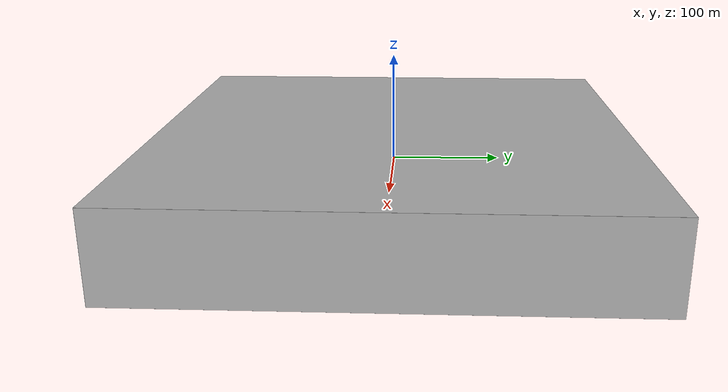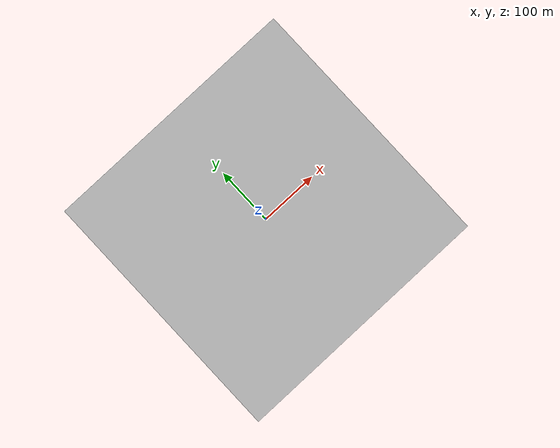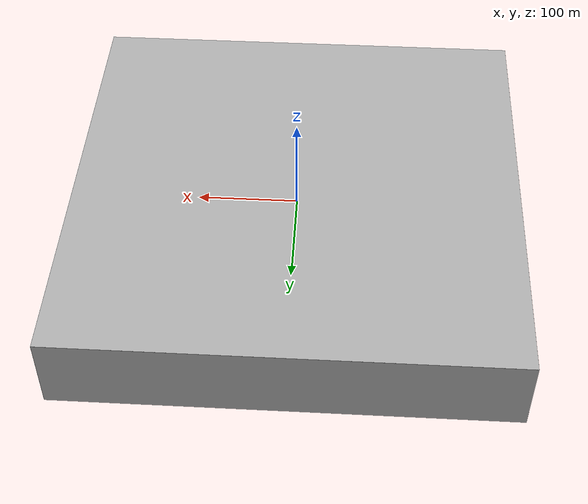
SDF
<sdf version="1.4">
 <world name="compact_underwater_terrain">
  <include><uri>model://sun</uri></include>
  <model name="compact_ocean_box">
   <static>true</static>
   <link name="link">
    <visual name="ground">
     <cast_shadows>false</cast_shadows>
     <pose>0 0 -50 0 0 0</pose>
     <geometry><box><size>444 444 .1</size></box></geometry>
     <material>
      <script>
       <uri>file://Media/materials/scripts/sand.material</uri>
       <name>UUVSimulator/SandAndStones</name>
      </script>
     </material>
    </visual>
    <collision name="ground">
     <pose>0 0 -50 0 0 0</pose>
     <geometry><box><size>444 444 .1</size></box></geometry>
    </collision>
    <visual name="surface">
     <cast_shadows>false</cast_shadows>
     <pose>0 0 30 0 0 0</pose>
     <geometry><box><size>444 444 .1</size></box></geometry>
     <material>
      <script>
       <uri>file://Media/materials/scripts/water.material</uri>
       <name>UUVSimulator/StaticDeepWater</name>
      </script>
     </material>
    </visual>
    <visual name="main_water_body">
     <cast_shadows>false</cast_shadows>
     <pose>0 0 -10 0 0 0</pose>
     <geometry><box><size>444 444 80</size></box></geometry>
     <material>
      <script><uri>file://Media/materials/scripts/water.material</uri><name>UUVSimulator/StaticWater</name></script>
     </material>
    </visual>
    <visual name="north">
     <cast_shadows>false</cast_shadows>
     <pose>222 0 -10 0 0 0</pose>
     <geometry><box><size>.1 444 80</size></box></geometry>
     <material>
      <script><uri>file://Media/materials/scripts/water.material</uri><name>UUVSimulator/SeaWall</name></script>
     </material>
    </visual>
    <visual name="south">
     <cast_shadows>false</cast_shadows>
     <pose>-222 0 -10 0 0 0</pose>
     <geometry><box><size>.1 444 80</size></box></geometry>
     <material>
      <script><uri>file://Media/materials/scripts/water.material</uri><name>UUVSimulator/SeaWall</name></script>
     </material>
    </visual>
    <visual name="east">
     <cast_shadows>false</cast_shadows>
     <pose>0 -222 -10 0 0 0</pose>
     <geometry><box><size>444 .1 80</size></box></geometry>
     <material>
      <script><uri>file://Media/materials/scripts/water.material</uri><name>UUVSimulator/SeaWall</name></script>
     </material>
    </visual>
    <visual name="west">
     <cast_shadows>false</cast_shadows>
     <pose>0 222 -10 0 0 0</pose>
     <geometry><box><size>444 .1 80</size></box></geometry>
     <material>
      <script><uri>file://Media/materials/scripts/water.material</uri><name>UUVSimulator/SeaWall</name></script>
     </material>
    </visual>
   </link>
  </model>
  <plugin name="underwater_current_plugin" filename="libuuv_underwater_current_ros_plugin.so">
   <namespace>hydrodynamics</namespace>
   <constant_current>
    <topic>current_velocity</topic>
    <velocity><mean>0</mean><min>0</min><max>5</max><mu>0.0</mu><noiseAmp>0.0</noiseAmp></velocity>
    <horizontal_angle>
     <mean>0</mean>
     <min>-3.141592653589793238</min>
     <max>3.141592653589793238</max>
     <mu>0.0</mu>
     <noiseAmp>0.0</noiseAmp>
    </horizontal_angle>
    <vertical_angle>
     <mean>0</mean>
     <min>-3.141592653589793238</min>
     <max>3.141592653589793238</max>
     <mu>0.0</mu>
     <noiseAmp>0.0</noiseAmp>
    </vertical_angle>
   </constant_current>
  </plugin>
  <plugin name="sc_interface" filename="libuuv_sc_ros_interface_plugin.so"/>
 </world>
</sdf>
